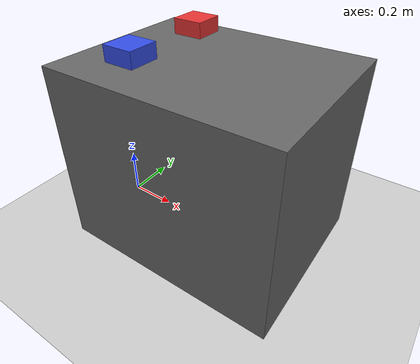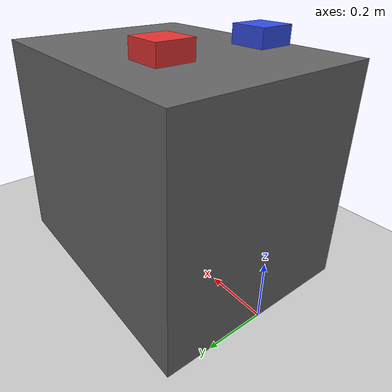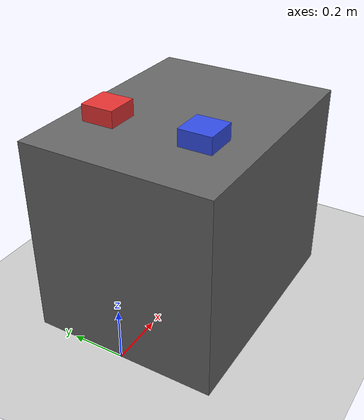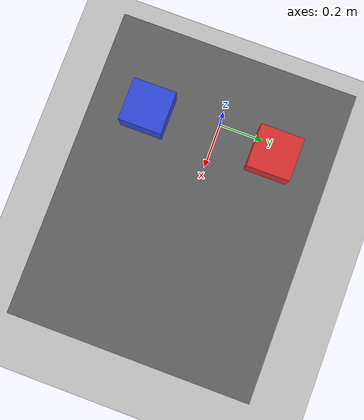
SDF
<?xml version="1.0" ?>
<sdf version="1.7">
  <world name="so101_workcell">
    <gravity>0 0 -9.8</gravity>
    <magnetic_field>6e-06 2.3e-05 -4.2e-05</magnetic_field>
    <scene>
      <ambient>0.75 0.75 0.75 1</ambient>
      <background>0.93 0.95 0.98 1</background>
      <shadows>false</shadows>
    </scene>
    <physics name="default_physics" type="ode">
      <max_step_size>0.001</max_step_size>
      <real_time_factor>1</real_time_factor>
      <real_time_update_rate>1000</real_time_update_rate>
    </physics>

    <include>
      <uri>model://sun</uri>
    </include>
    <include>
      <uri>model://ground_plane</uri>
    </include>

    <model name="work_table">
      <static>true</static>
      <pose>0.45 0.0 0.375 0 0 0</pose>
      <link name="table_link">
        <collision name="table_collision">
          <geometry>
            <box>
              <size>0.9 0.7 0.75</size>
            </box>
          </geometry>
        </collision>
        <visual name="table_visual">
          <geometry>
            <box>
              <size>0.9 0.7 0.75</size>
            </box>
          </geometry>
          <material>
            <ambient>0.3 0.3 0.3 1</ambient>
            <diffuse>0.4 0.4 0.4 1</diffuse>
          </material>
        </visual>
      </link>
    </model>

    <model name="pick_bin">
      <static>true</static>
      <pose>0.25 0.18 0.80 0 0 0</pose>
      <link name="pick_bin_link">
        <collision name="pick_bin_col">
          <geometry><box><size>0.12 0.12 0.06</size></box></geometry>
        </collision>
        <visual name="pick_bin_vis">
          <geometry><box><size>0.12 0.12 0.06</size></box></geometry>
          <material><ambient>0.8 0.1 0.1 1</ambient><diffuse>0.9 0.2 0.2 1</diffuse></material>
        </visual>
      </link>
    </model>

    <model name="place_bin">
      <static>true</static>
      <pose>0.25 -0.18 0.80 0 0 0</pose>
      <link name="place_bin_link">
        <collision name="place_bin_col">
          <geometry><box><size>0.12 0.12 0.06</size></box></geometry>
        </collision>
        <visual name="place_bin_vis">
          <geometry><box><size>0.12 0.12 0.06</size></box></geometry>
          <material><ambient>0.1 0.2 0.8 1</ambient><diffuse>0.2 0.3 0.9 1</diffuse></material>
        </visual>
      </link>
    </model>

    <gui fullscreen="0">
      <camera name="user_camera">
        <pose>1.35 -1.10 1.45 0 0.55 2.35</pose>
        <view_controller>orbit</view_controller>
        <projection_type>perspective</projection_type>
      </camera>
    </gui>
  </world>
</sdf>
